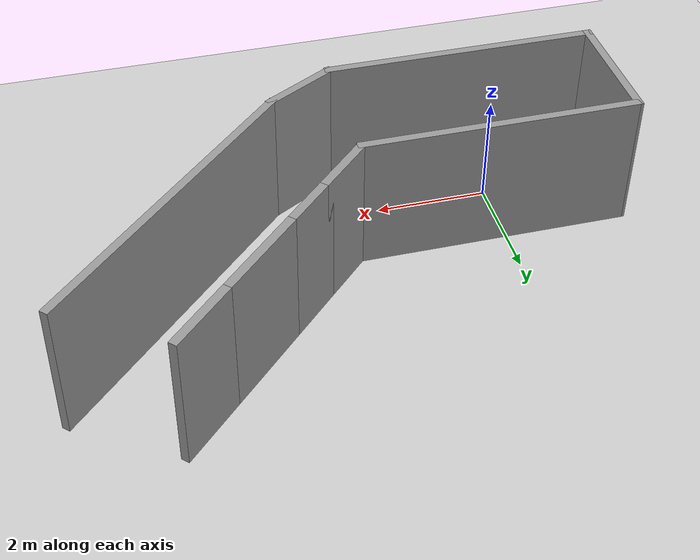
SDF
<sdf version="1.7">
 <world name="default">
  <light name="sun" type="directional">
   <pose>0 0 10 0 -0 0</pose>
   <diffuse>0.8 0.8 0.8 1</diffuse>
   <specular>0.2 0.2 0.2 1</specular>
   <attenuation>
    <range>1000</range>
    <constant>0.9</constant>
    <linear>0.01</linear>
    <quadratic>0.001</quadratic>
   </attenuation>
   <direction>-0.5 0.1 -0.9</direction>
   <spot><inner_angle>0</inner_angle><outer_angle>0</outer_angle><falloff>0</falloff></spot>
  </light>
  <model name="ground_plane">
   <static>1</static>
   <link name="link">
    <collision name="collision">
     <geometry><plane><normal>0 0 1</normal><size>100 100</size></plane></geometry>
     <surface>
      <contact><collide_bitmask>65535</collide_bitmask></contact>
      <friction><ode><mu>100</mu><mu2>50</mu2></ode></friction>
     </surface>
    </collision>
    <visual name="visual">
     <cast_shadows>0</cast_shadows>
     <geometry><plane><normal>0 0 1</normal><size>100 100</size></plane></geometry>
     <material>
      <script><uri>file://media/materials/scripts/gazebo.material</uri><name>Gazebo/Grey</name></script>
     </material>
    </visual>
   </link>
  </model>
  <gravity>0 0 -9.8</gravity>
  <magnetic_field>6e-06 2.3e-05 -4.2e-05</magnetic_field>
  <atmosphere type="adiabatic"/>
  <physics type="ode">
   <max_step_size>0.001</max_step_size>
   <real_time_factor>1</real_time_factor>
   <real_time_update_rate>1000</real_time_update_rate>
  </physics>
  <scene><ambient>0.4 0.4 0.4 1</ambient><background>0.7 0.7 0.7 1</background><shadows>1</shadows></scene>
  <spherical_coordinates>
   <surface_model>EARTH_WGS84</surface_model>
   <latitude_deg>0</latitude_deg>
   <longitude_deg>0</longitude_deg>
   <elevation>0</elevation>
   <heading_deg>0</heading_deg>
  </spherical_coordinates>
  <model name="narrow_path">
   <pose>2.90588 1.87565 0 0 -0 0</pose>
   <link name="Wall_0">
    <collision name="Wall_0_Collision">
     <geometry><box><size>5 0.15 2.5</size></box></geometry>
     <pose>0 0 1.25 0 -0 0</pose>
    </collision>
    <visual name="Wall_0_Visual">
     <pose>0 0 1.25 0 -0 0</pose>
     <geometry><box><size>5 0.15 2.5</size></box></geometry>
     <material>
      <script><uri>file://media/materials/scripts/gazebo.material</uri><name>Gazebo/Grey</name></script>
      <ambient>1 1 1 1</ambient>
     </material>
     <meta><layer>0</layer></meta>
    </visual>
    <pose>-2.66838 -2.93581 0 0 -0 0</pose>
   </link>
   <link name="Wall_10">
    <collision name="Wall_10_Collision">
     <geometry><box><size>1.5 0.15 2.5</size></box></geometry>
     <pose>0 0 1.25 0 -0 0</pose>
    </collision>
    <visual name="Wall_10_Visual">
     <pose>0 0 1.25 0 -0 0</pose>
     <geometry><box><size>1.5 0.15 2.5</size></box></geometry>
     <material>
      <script><uri>file://media/materials/scripts/gazebo.material</uri><name>Gazebo/Grey</name></script>
      <ambient>1 1 1 1</ambient>
     </material>
     <meta><layer>0</layer></meta>
    </visual>
    <pose>0.341182 -2.59831 0 0 -0 0.523599</pose>
   </link>
   <link name="Wall_11">
    <collision name="Wall_11_Collision">
     <geometry><box><size>6 0.15 2.5</size></box></geometry>
     <pose>0 0 1.25 0 -0 0</pose>
    </collision>
    <visual name="Wall_11_Visual">
     <pose>0 0 1.25 0 -0 0</pose>
     <geometry><box><size>6 0.15 2.5</size></box></geometry>
     <material>
      <script><uri>file://media/materials/scripts/gazebo.material</uri><name>Gazebo/Grey</name></script>
      <ambient>1 1 1 1</ambient>
     </material>
     <meta><layer>0</layer></meta>
    </visual>
    <pose>2.99404 -0.192523 0 0 -0 0.785398</pose>
   </link>
   <link name="Wall_13">
    <collision name="Wall_13_Collision">
     <geometry><box><size>2.37641 0.15 2.5</size></box></geometry>
     <pose>0 0 1.25 0 -0 0</pose>
    </collision>
    <visual name="Wall_13_Visual">
     <pose>0 0 1.25 0 -0 0</pose>
     <geometry><box><size>2.37641 0.15 2.5</size></box></geometry>
     <material>
      <script><uri>file://media/materials/scripts/gazebo.material</uri><name>Gazebo/Grey</name></script>
      <ambient>1 1 1 1</ambient>
     </material>
     <meta><layer>0</layer></meta>
    </visual>
    <pose>-5.09331 -1.82261 0 0 -0 -1.57086</pose>
   </link>
   <link name="Wall_3">
    <collision name="Wall_3_Collision">
     <geometry><box><size>5 0.15 2.5</size></box></geometry>
     <pose>0 0 1.25 0 -0 0</pose>
    </collision>
    <visual name="Wall_3_Visual">
     <pose>0 0 1.25 0 -0 0</pose>
     <geometry><box><size>5 0.15 2.5</size></box></geometry>
     <material>
      <script><uri>file://media/materials/scripts/gazebo.material</uri><name>Gazebo/Grey</name></script>
      <ambient>1 1 1 1</ambient>
     </material>
     <meta><layer>0</layer></meta>
    </visual>
    <pose>-2.66824 -0.709404 0 0 -0 0</pose>
   </link>
   <link name="Wall_5">
    <collision name="Wall_5_Collision">
     <geometry><box><size>1.25 0.15 2.5</size></box></geometry>
     <pose>0 0 1.25 0 -0 0</pose>
    </collision>
    <visual name="Wall_5_Visual">
     <pose>0 0 1.25 0 -0 0</pose>
     <geometry><box><size>1.25 0.15 2.5</size></box></geometry>
     <material>
      <script><uri>file://media/materials/scripts/gazebo.material</uri><name>Gazebo/Grey</name></script>
      <ambient>1 1 1 1</ambient>
     </material>
     <meta><layer>0</layer></meta>
    </visual>
    <pose>0.145671 -0.320495 0 0 -0 0.785398</pose>
   </link>
   <link name="Wall_6">
    <collision name="Wall_6_Collision">
     <geometry><box><size>1.25 0.15 2.5</size></box></geometry>
     <pose>0 0 1.25 0 -0 0</pose>
    </collision>
    <visual name="Wall_6_Visual">
     <pose>0 0 1.25 0 -0 0</pose>
     <geometry><box><size>1.25 0.15 2.5</size></box></geometry>
     <material>
      <script><uri>file://media/materials/scripts/gazebo.material</uri><name>Gazebo/Grey</name></script>
      <ambient>1 1 1 1</ambient>
     </material>
     <meta><layer>0</layer></meta>
    </visual>
    <pose>0.923488 0.457322 0 0 -0 0.785398</pose>
   </link>
   <link name="Wall_7">
    <collision name="Wall_7_Collision">
     <geometry><box><size>1.75 0.15 2.5</size></box></geometry>
     <pose>0 0 1.25 0 -0 0</pose>
    </collision>
    <visual name="Wall_7_Visual">
     <pose>0 0 1.25 0 -0 0</pose>
     <geometry><box><size>1.75 0.15 2.5</size></box></geometry>
     <material>
      <script><uri>file://media/materials/scripts/gazebo.material</uri><name>Gazebo/Grey</name></script>
      <ambient>1 1 1 1</ambient>
     </material>
     <meta><layer>0</layer></meta>
    </visual>
    <pose>1.87808 1.41192 0 0 -0 0.785398</pose>
   </link>
   <link name="Wall_8">
    <collision name="Wall_8_Collision">
     <geometry><box><size>1.5 0.15 2.5</size></box></geometry>
     <pose>0 0 1.25 0 -0 0</pose>
    </collision>
    <visual name="Wall_8_Visual">
     <pose>0 0 1.25 0 -0 0</pose>
     <geometry><box><size>1.5 0.15 2.5</size></box></geometry>
     <material>
      <script><uri>file://media/materials/scripts/gazebo.material</uri><name>Gazebo/Grey</name></script>
      <ambient>1 1 1 1</ambient>
     </material>
     <meta><layer>0</layer></meta>
    </visual>
    <pose>2.92107 2.4549 0 0 -0 0.785398</pose>
   </link>
   <static>1</static>
  </model>
 </world>
</sdf>
